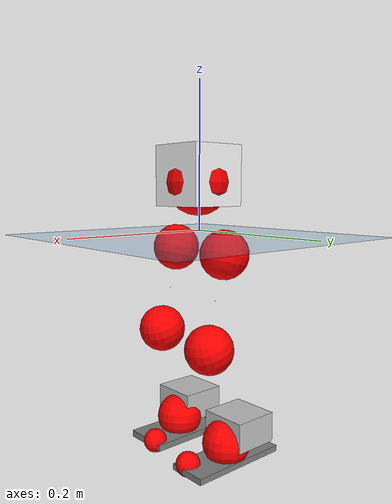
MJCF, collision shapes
<mujoco model="pi_12dof_release_v1">
  <compiler angle="radian" assetdir="assets" balanceinertia="true" inertiafromgeom="false"/>

  <option timestep="0.005" density="1.2" viscosity="2e-05"/>

  <size nkey="1"/>

  <visual>
    <quality shadowsize="8192"/>
    <map shadowclip="0.5"/>
  </visual>

  <default>
    <default class="/">
      <joint armature="0.01" damping="0.01" frictionloss="0.01"/>
      <geom contype="0" conaffinity="0" group="1" solref="-1000 -80"/>
      <site size="0.01 0.005 0.005" group="5"/>
      <general forcelimited="true" biastype="affine" gainprm="20" biasprm="0 -20 -0.5"/>
      <default class="foot">
        <geom size="0.0845 0.036 0.005" type="box" condim="6" group="4" priority="1" friction="0.9 0.2 0.2" solimp="0.015 1 0.005"/>
      </default>
      <default class="reward_collision_sphere">
        <geom group="5" rgba="1 0 0 1"/>
      </default>
    </default>
  </default>

  <asset>
    <texture type="skybox" colorspace="auto" name="//unnamed_texture_0" builtin="gradient" rgb1="0.95 0.95 0.95" rgb2="0.95 0.95 0.95" width="100" height="600"/>
    <texture type="2d" colorspace="auto" name="texplane" builtin="checker" rgb1="0.345 0.575 0.748" rgb2="0.345 0.575 0.748" markrgb="1 1 1" width="512" height="512"/>
    <material name="MatPlane" class="/" texture="texplane" texuniform="true" texrepeat="2 2" specular="0.9"/>
    <mesh name="baselink_1" class="/" file="baselink_1.STL"/>
    <mesh name="r_hip_pitch_link" class="/" file="r_hip_pitch_link.STL"/>
    <mesh name="r_hip_roll_link" class="/" file="r_hip_roll_link.STL"/>
    <mesh name="r_thigh_link" class="/" file="r_thigh_link.STL"/>
    <mesh name="r_calf_link" class="/" file="r_calf_link.STL"/>
    <mesh name="r_ankle_pitch_link" class="/" file="r_ankle_pitch_link.STL"/>
    <mesh name="r_ankle_roll_link" class="/" file="r_ankle_roll_link.STL"/>
    <mesh name="l_hip_pitch_link" class="/" file="l_hip_pitch_link.STL"/>
    <mesh name="l_hip_roll_link" class="/" file="l_hip_roll_link.STL"/>
    <mesh name="l_thigh_link" class="/" file="l_thigh_link.STL"/>
    <mesh name="l_calf_link" class="/" file="l_calf_link.STL"/>
    <mesh name="l_ankle_pitch_link" class="/" file="l_ankle_pitch_link.STL"/>
    <mesh name="l_ankle_roll_link" class="/" file="l_ankle_roll_link.STL"/>
  </asset>

  <worldbody>
    <geom name="floor" class="/" size="100 100 0.125" type="plane" group="0" material="MatPlane"/>
    <light name="toplight_shadow" class="/" pos="0 0 5" dir="0.0990148 0.0990148 -0.990148" type="directional" ambient="0.04 0.04 0.04" diffuse="0.55 0.55 0.55" specular="0.12 0.12 0.12"/>
    <light name="toplight_fill" class="/" pos="0 0 5" dir="0.0990148 0.0990148 -0.990148" type="directional" castshadow="false" ambient="0.04 0.04 0.04" diffuse="0.3 0.3 0.3" specular="0.08 0.08 0.08"/>
    <body name="trunk" pos="0.00155146 -0.000798595 0.00312074" quat="0.999999 0.000919925 -0.000631116 0.00012039">
      <inertial pos="0.00499507 -0.00131347 0.0357293" quat="0.688555 0.0119366 0.00895094 0.72503" mass="1.10974" diaginertia="0.00442359 0.00134331 0.00214734"/>
      <joint name="//unnamed_joint_0" type="free"/>
      <geom name="//unnamed_geom_1" class="/" type="mesh" density="0" rgba="1 1 1 1" mesh="baselink_1"/>
      <geom name="//unnamed_geom_2" class="/" size="0.0407206 0.0407206 0.0407206" pos="0 0 0.0707786" type="box" rgba="1 1 1 1"/>
      <geom name="//unnamed_geom_3" class="reward_collision_sphere" size="0.0447926" pos="0 0 0.0619313"/>
      <site name="imu" class="/" pos="0.0113419 0.00709742 0.00146406" size="0.00814411"/>
      <camera name="track" class="/" pos="0 -1.38813 0" quat="0.707107 0.707107 0 0" mode="trackcom"/>
      <camera name="ego_camera" class="/" pos="0.0648327 0 0.159252" quat="-0.5 -0.5 0.5 0.5"/>
      <body name="r_hip_pitch_link" pos="-0.00299449 -0.0125462 -0.0296823" quat="0.992186 1.36152e-05 -0.124764 0.000169457">
        <inertial pos="0.0025851 -0.0396977 0.00265487" quat="-0.00721985 0.711638 -0.0253014 0.702053" mass="0.195133" diaginertia="5.1505e-05 1.49833e-05 4.42009e-05"/>
        <joint name="r_hip_pitch_joint" class="/" pos="0 0 0" axis="-0.00646875 -0.999979 -0.000536362" range="-1.69203 1.19462" armature="0.007728" damping="0.0132387" frictionloss="0.00896145"/>
        <geom name="//unnamed_geom_4" class="/" type="mesh" density="0" rgba="0.75294 0.75294 0.75294 1" mesh="r_hip_pitch_link"/>
        <geom name="//unnamed_geom_5" class="/" size="0.000407206 0.000407206 0.000407206" type="box" rgba="0.75294 0.75294 0.75294 1"/>
        <body name="r_hip_roll_link" pos="0.0014926 -0.0361857 -0.000301684" quat="1 0.00033699 -0.000162911 -0.000352118">
          <inertial pos="-5.11093e-05 -0.000227435 -0.0588473" quat="0.715198 -0.0777488 -0.0808655 0.689861" mass="0.220008" diaginertia="0.000168824 4.5551e-05 7.12901e-05"/>
          <joint name="r_hip_roll_joint" class="/" pos="0 0 0" axis="-0.999999 0.000866431 0.000561751" range="-0.123189 0.517133" armature="0.00959284" damping="0.000920193" frictionloss="0.00865233"/>
          <geom name="//unnamed_geom_6" class="/" type="mesh" density="0" rgba="0.75294 0.75294 0.75294 1" mesh="r_hip_roll_link"/>
          <geom name="//unnamed_geom_7" class="/" size="0.000407206 0.000407206 0.000407206" type="box" rgba="0.75294 0.75294 0.75294 1"/>
          <geom name="//unnamed_geom_8" class="reward_collision_sphere" size="0.0325764"/>
          <body name="r_thigh_link" pos="-0.00337469 -0.000203525 -0.0592917" quat="1 -0.000808783 -0.000422026 -0.000152771">
            <inertial pos="0.00451758 0.00343784 -0.0411296" quat="0.737282 0.675586 -2.88324e-06 7.50828e-07" mass="0.0604202" diaginertia="6.20703e-05 1.55108e-05 3.18415e-05"/>
            <joint name="r_thigh_joint" class="/" pos="0 0 0" axis="-0.00354936 -0.000433802 -0.999994" range="-0.342056 0.570428" armature="0.00943732" damping="0.00510615" frictionloss="0.00729947"/>
            <geom name="//unnamed_geom_9" class="/" type="mesh" density="0" rgba="0.75294 0.75294 0.75294 1" mesh="r_thigh_link"/>
            <geom name="//unnamed_geom_10" class="/" size="0.000407206 0.000407206 0.000407206" type="box" rgba="0.75294 0.75294 0.75294 1"/>
            <body name="r_calf_link" pos="-0.00121534 -0.00195402 -0.0593672" quat="0.947866 0.00158913 0.318666 0.000240002">
              <inertial pos="-0.00322196 -0.000504056 -0.063056" quat="0.999779 -0.00156185 0.00655713 0.0199186" mass="0.407414" diaginertia="0.00168757 0.000549713 9.34886e-05"/>
              <joint name="r_calf_joint" class="/" pos="0 0 0" axis="-0.000486458 -0.999861 -0.0166408" range="-1.63603 0.683202" armature="0.00812429" damping="0.00123489" frictionloss="0.00851115"/>
              <geom name="//unnamed_geom_11" class="/" type="mesh" density="0" rgba="0.75294 0.75294 0.75294 1" mesh="r_calf_link"/>
              <geom name="//unnamed_geom_12" class="/" size="0.000407206 0.000407206 0.000407206" type="box" rgba="0.75294 0.75294 0.75294 1"/>
              <geom name="//unnamed_geom_13" class="reward_collision_sphere" size="0.0325764"/>
              <body name="r_ankle_pitch_link" pos="-0.00160812 -0.00066113 -0.129678" quat="0.980243 -0.000770644 -0.197794 0.000105297">
                <inertial pos="0.00183913 0.00173559 -0.00307337" quat="0.0139131 0.706924 0.00382681 0.707142" mass="0.0944636" diaginertia="0.000147493 3.58516e-05 6.65329e-05"/>
                <joint name="r_ankle_pitch_joint" class="/" pos="0 0 0" axis="-0.00437195 -0.999988 -0.00211544" stiffness="0.0052147" range="-1.33241 0.498645" armature="0.00707335" damping="0" frictionloss="0.008941"/>
                <geom name="//unnamed_geom_14" class="/" type="mesh" density="0" rgba="0.75294 0.75294 0.75294 1" mesh="r_ankle_pitch_link"/>
                <geom name="//unnamed_geom_15" class="/" size="0.031762 0.0325764 0.0203603" type="box" rgba="0.75294 0.75294 0.75294 1"/>
                <body name="r_ankle_roll_link" pos="0.068223 0.00686267 -0.000201468" quat="0.999999 3.3178e-06 -0.000741786 -0.000994181">
                  <inertial pos="-0.0243119 0.00211556 -0.0135391" quat="0.547867 0.434094 0.429114 0.572072" mass="0.280303" diaginertia="0.000557844 0.000167347 0.000155454"/>
                  <joint name="r_ankle_roll_joint" class="/" pos="0 0 0" axis="-0.999999 0.00125527 -0.000368344" stiffness="0.00693738" range="-0.0726611 0.180379" armature="0.00865272" damping="0" frictionloss="0.00909992"/>
                  <geom name="//unnamed_geom_16" class="/" type="mesh" density="0" rgba="0.75294 0.75294 0.75294 1" mesh="r_ankle_roll_link"/>
                  <geom name="//unnamed_geom_17" class="/" type="mesh" rgba="0.75294 0.75294 0.75294 1" mesh="r_ankle_roll_link"/>
                  <geom name="right_foot" class="foot" size="0.0638495 0.0323688 0.00449085" pos="-0.0440863 0 -0.0389282"/>
                  <geom name="//unnamed_geom_19" class="reward_collision_sphere" size="0.0325764" pos="-0.0432218 0 -0.0176947"/>
                  <geom name="//unnamed_geom_20" class="reward_collision_sphere" size="0.0162882" pos="0.0129665 0.0138813 -0.0353893"/>
                  <geom name="//unnamed_geom_21" class="reward_collision_sphere" size="0.0162882" pos="-0.103732 0.0138813 -0.0353893"/>
                  <site name="right_foot" class="foot" pos="-0.0440863 0 -0.0389282" size="0.00814411"/>
                </body>
              </body>
            </body>
          </body>
        </body>
      </body>
      <body name="l_hip_pitch_link" pos="0.000192062 0.0155965 -0.0293309" quat="0.992183 0.000882233 -0.124787 -0.000729481">
        <inertial pos="-0.00223142 0.0394554 0.0031599" quat="-0.0373704 0.702423 0.041124 0.709587" mass="0.203371" diaginertia="5.9265e-05 1.7128e-05 5.37277e-05"/>
        <joint name="l_hip_pitch_joint" class="/" pos="0 0 0" axis="-0.00535425 0.999984 0.00194093" range="-1.18695 1.71644" armature="0.00811018" damping="0.00478442" frictionloss="0.00887163"/>
        <geom name="//unnamed_geom_22" class="/" type="mesh" density="0" rgba="0.75294 0.75294 0.75294 1" mesh="l_hip_pitch_link"/>
        <geom name="//unnamed_geom_23" class="/" size="0.000407206 0.000407206 0.000407206" type="box" rgba="0.75294 0.75294 0.75294 1"/>
        <body name="l_hip_roll_link" pos="0.00334672 0.040275 -0.00301644" quat="1 7.94051e-06 2.58787e-05 9.96391e-06">
          <inertial pos="-0.00519708 -0.000115678 -0.0503337" quat="0.699377 -0.0756324 -0.0777228 0.706477" mass="0.198691" diaginertia="0.000148019 4.33008e-05 6.6471e-05"/>
          <joint name="l_hip_roll_joint" class="/" pos="0 0 0" axis="-0.999993 -0.00355295 0.00113366" range="-0.502232 0.0841294" armature="0.00804615" damping="0.0085534" frictionloss="0.00809388"/>
          <geom name="//unnamed_geom_24" class="/" type="mesh" density="0" rgba="0.75294 0.75294 0.75294 1" mesh="l_hip_roll_link"/>
          <geom name="//unnamed_geom_25" class="/" size="0.000407206 0.000407206 0.000407206" type="box" rgba="0.75294 0.75294 0.75294 1"/>
          <geom name="//unnamed_geom_26" class="reward_collision_sphere" size="0.0325764"/>
          <body name="l_thigh_link" pos="-0.000727072 -0.0020813 -0.0603999" quat="1 -0.00016921 7.36865e-05 4.53114e-05">
            <inertial pos="0.00312725 -0.000456826 -0.0389036" quat="0.675893 0.736941 0.00608377 0.0069977" mass="0.0606558" diaginertia="6.00678e-05 1.48196e-05 3.21594e-05"/>
            <joint name="l_thigh_joint" class="/" pos="0 0 0" axis="0.001868 0.00176004 -0.999997" range="-0.597222 0.253067" armature="0.00720142" damping="0" frictionloss="0.00673107"/>
            <geom name="//unnamed_geom_27" class="/" type="mesh" density="0" rgba="0.75294 0.75294 0.75294 1" mesh="l_thigh_link"/>
            <geom name="//unnamed_geom_28" class="/" size="0.000407206 0.000407206 0.000407206" type="box" rgba="0.75294 0.75294 0.75294 1"/>
            <body name="l_calf_link" pos="-0.00480919 0.00134799 -0.0640961" quat="0.94781 0.000254288 0.318834 0.000375269">
              <inertial pos="0.000644767 0.000809437 -0.061446" quat="0.999921 0.011794 -0.00404844 0.00134992" mass="0.444613" diaginertia="0.0015821 0.000537132 9.29254e-05"/>
              <joint name="l_calf_joint" class="/" pos="0 0 0" axis="0.00600441 0.999948 -0.00826489" stiffness="0.00207456" range="-0.623304 1.60996" armature="0.00908852" damping="0" frictionloss="0.00852864"/>
              <geom name="//unnamed_geom_29" class="/" type="mesh" density="0" rgba="0.75294 0.75294 0.75294 1" mesh="l_calf_link"/>
              <geom name="//unnamed_geom_30" class="/" size="0.000407206 0.000407206 0.000407206" type="box" rgba="0.75294 0.75294 0.75294 1"/>
              <geom name="//unnamed_geom_31" class="reward_collision_sphere" size="0.0325764"/>
              <body name="l_ankle_pitch_link" pos="-0.00355382 0.00333093 -0.127763" quat="0.979986 0.000789841 -0.199066 0.000598154">
                <inertial pos="0.00671577 -0.00255388 0.0016417" quat="-0.00128532 0.709059 -0.000640843 0.705148" mass="0.096069" diaginertia="0.00014143 3.49311e-05 6.4772e-05"/>
                <joint name="l_ankle_pitch_joint" class="/" pos="0 0 0" axis="-0.00197051 0.999995 0.00233654" range="-0.525394 1.31678" armature="0.00711872" damping="0.0260031" frictionloss="0.0083052"/>
                <geom name="//unnamed_geom_32" class="/" type="mesh" density="0" rgba="0.75294 0.75294 0.75294 1" mesh="l_ankle_pitch_link"/>
                <geom name="//unnamed_geom_33" class="/" size="0.031762 0.0325764 0.0203603" type="box" rgba="0.75294 0.75294 0.75294 1"/>
                <body name="l_ankle_roll_link" pos="0.0671531 -4.48444e-05 0.000796305" quat="0.999998 -0.00040328 -0.00201193 0.000491782">
                  <inertial pos="-0.0200421 -0.000435615 -0.0122796" quat="0.556716 0.437864 0.437629 0.553916" mass="0.276411" diaginertia="0.000540889 0.000172485 0.000160437"/>
                  <joint name="l_ankle_roll_joint" class="/" pos="0 0 0" axis="-1 0.00071336 -0.000292094" range="-0.122366 0.233173" armature="0.00851653" damping="0.00185794" frictionloss="0.00732515"/>
                  <geom name="//unnamed_geom_34" class="/" type="mesh" density="0" rgba="0.75294 0.75294 0.75294 1" mesh="l_ankle_roll_link"/>
                  <geom name="//unnamed_geom_35" class="/" type="mesh" rgba="0.75294 0.75294 0.75294 1" mesh="l_ankle_roll_link"/>
                  <geom name="left_foot" class="foot" size="0.0716139 0.0270375 0.00399059" pos="-0.0440863 0 -0.0389282"/>
                  <geom name="//unnamed_geom_37" class="reward_collision_sphere" size="0.0325764" pos="-0.0432218 0 -0.0176947"/>
                  <geom name="//unnamed_geom_38" class="reward_collision_sphere" size="0.0162882" pos="0.0129665 -0.0138813 -0.0353893"/>
                  <geom name="//unnamed_geom_39" class="reward_collision_sphere" size="0.0162882" pos="-0.103732 -0.0138813 -0.0353893"/>
                  <site name="left_foot" class="foot" pos="-0.0440863 0 -0.0389282" size="0.00814411"/>
                </body>
              </body>
            </body>
          </body>
        </body>
      </body>
    </body>
  </worldbody>

  <contact>
    <pair class="/" geom1="floor" geom2="right_foot" name="//unnamed_contact_1"/>
    <pair class="/" geom1="floor" geom2="left_foot" name="//unnamed_contact_0"/>
  </contact>

  <actuator>
    <general name="r_hip_pitch_joint" class="/" joint="r_hip_pitch_joint" forcerange="-16.3086 16.3086" gainprm="17.9632" biasprm="0 -17.9632 -0.429129"/>
    <general name="r_hip_roll_joint" class="/" joint="r_hip_roll_joint" forcerange="-19.4674 19.4674" gainprm="17.9632" biasprm="0 -17.9632 -0.429129"/>
    <general name="r_thigh_joint" class="/" joint="r_thigh_joint" forcerange="-17.6345 17.6345" gainprm="17.9632" biasprm="0 -17.9632 -0.429129"/>
    <general name="r_calf_joint" class="/" joint="r_calf_joint" forcerange="-14.4748 14.4748" gainprm="17.9632" biasprm="0 -17.9632 -0.429129"/>
    <general name="r_ankle_pitch_joint" class="/" joint="r_ankle_pitch_joint" forcerange="-15.6007 15.6007" gainprm="17.9632" biasprm="0 -17.9632 -0.429129"/>
    <general name="r_ankle_roll_joint" class="/" joint="r_ankle_roll_joint" forcerange="-19.3684 19.3684" gainprm="17.9632" biasprm="0 -17.9632 -0.429129"/>
    <general name="l_hip_pitch_joint" class="/" joint="l_hip_pitch_joint" forcerange="-17.6211 17.6211" gainprm="17.9632" biasprm="0 -17.9632 -0.429129"/>
    <general name="l_hip_roll_joint" class="/" joint="l_hip_roll_joint" forcerange="-18.5147 18.5147" gainprm="17.9632" biasprm="0 -17.9632 -0.429129"/>
    <general name="l_thigh_joint" class="/" joint="l_thigh_joint" forcerange="-18.0766 18.0766" gainprm="17.9632" biasprm="0 -17.9632 -0.429129"/>
    <general name="l_calf_joint" class="/" joint="l_calf_joint" forcerange="-15.8328 15.8328" gainprm="17.9632" biasprm="0 -17.9632 -0.429129"/>
    <general name="l_ankle_pitch_joint" class="/" joint="l_ankle_pitch_joint" forcerange="-18.1588 18.1588" gainprm="17.9632" biasprm="0 -17.9632 -0.429129"/>
    <general name="l_ankle_roll_joint" class="/" joint="l_ankle_roll_joint" forcerange="-17.6778 17.6778" gainprm="17.9632" biasprm="0 -17.9632 -0.429129"/>
  </actuator>

  <sensor>
    <gyro site="imu" name="imu_angular_velocity"/>
    <velocimeter site="imu" name="imu_linear_velocity"/>
    <framelinvel objtype="site" objname="left_foot" name="left_foot_global_linear_velocity"/>
    <framelinvel objtype="site" objname="right_foot" name="right_foot_global_linear_velocity"/>
  </sensor>

  <keyframe>
    <key name="home" qpos="0 0 0.291 1 0 0 0 0.4 0 0 -0.8 0.4 0 -0.4 0 0 0.8 -0.4 0"/>
  </keyframe>
</mujoco>
